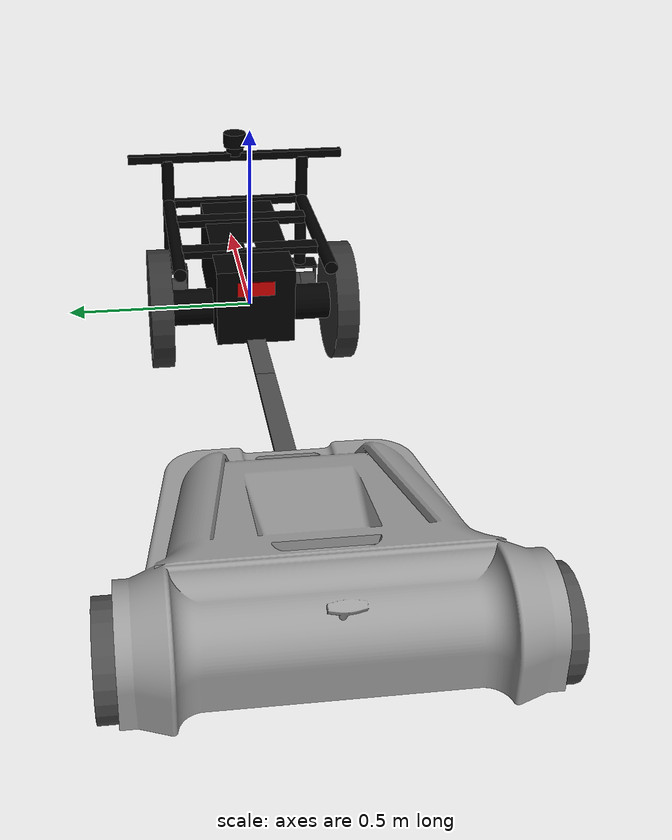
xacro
<?xml version="1.0"?>
<robot name="beaverbot" xmlns:xacro="http://ros.org/wiki/xacro">

  <!-- Import all robot parts which were xacroed -->
  <xacro:include filename="$(find beaverbot_description)/urdf/beaverbot.xacro" />
  <!-- Import Rviz colors -->
  <xacro:include filename="$(find beaverbot_description)/urdf/colors.xacro" />
  <!-- Import robot properties -->
  <xacro:include filename="$(find beaverbot_description)/urdf/properties.xacro" />
  <!-- Import sensor and actuator properties -->
  <xacro:include filename="$(find beaverbot_description)/urdf/sensors_and_actuators.xacro" />
  <xacro:arg name="robot_namespace" default="/" />

  <link name="base_link">
    <visual>
      <geometry>
        <box size="0.01 0.01 0.01"/>
      </geometry>
      <material name="Black"/>
    </visual>
    <collision>
      <geometry>
        <box size="0.01 0.01 0.01"/>
      </geometry>
    </collision>
    <xacro:inertial_box mass="0.01" x="0.01" y="0.01" z="0.01" ox="0.0" oy="0.0" oz="0.0"/>
  </link>
  <gazebo reference="base_link">
    <material>Gazebo/Black</material>
  </gazebo>

  <link name="base">
    <visual>
      <geometry>
        <box size="0.52 0.21 0.21"/>
      </geometry>
      <material name="Black"/>
    </visual>
    <xacro:inertial_box mass="${base_mass}" x="0.52" y="0.21" z="0.21" ox="0.0" oy="0.0" oz="0.0"/>
  </link>
  <gazebo reference="base">
    <material>Gazebo/Black</material>
  </gazebo>
  <joint name="base_link_to_base" type="fixed">
    <parent link="base_link"/>
    <child link="base"/>
    <origin xyz="0.11 0.0 0.061" />
  </joint>

  <link name="robot_center">
    <visual>
      <geometry>
        <box size="0.01 0.01 0.01" />
      </geometry>
      <material name="Red"/>
    </visual>
  </link>
  <gazebo reference="robot_center">
    <material>Gazebo/Red</material>
  </gazebo>
  <joint name="base_link_to_robot_center" type="fixed">
    <parent link="base_link"/>
    <child link="robot_center"/>
    <origin xyz="0 0.0 0.0" />
  </joint>

  <!-- ////////////////////////// Base Link and Wheel Connections and Links ////////////////////////// -->

  <xacro:default_box parent="base" child_name="back_base_support_frame" mass="${base_support_frame_mass}" sizex="0.05" sizey="0.40" sizez="0.02" ox="-0.11" oy="0.0" oz="0.105" yaw="0.0" pitch="0.0" roll="0.0" color="Black" />
  <xacro:default_box parent="base" child_name="front_base_support_frame" mass="${base_support_frame_mass}" sizex="0.05" sizey="0.40" sizez="0.02" ox="0.11" oy="0.0" oz="0.105" yaw="0.0" pitch="0.0" roll="0.0" color="Black" />

  <xacro:default_zylinder_in_X parent="back_base_support_frame" child_name="zylinder_base_support_left" mass="${zylinder_base_support_mass}" length="0.52" radius="0.0175" ox="0.11" oy="0.2" oz="0.0" yaw="0.0" pitch="${pi/2}" roll="0.0" color="Black" />
  <xacro:default_zylinder_in_X parent="back_base_support_frame" child_name="zylinder_base_support_right" mass="${zylinder_base_support_mass}" length="0.52" radius="0.0175" ox="0.11" oy="-0.2" oz="0.0" yaw="0.0" pitch="${pi/2}" roll="0.0" color="Black" />

  <xacro:default_box parent="base" child_name="support_link" mass="${support_link_mass}" sizex="0.022" sizey="0.4" sizez="0.022" ox="0.26" oy="0.0" oz="0.105" yaw="0.0" pitch="0.0" roll="0.0" color="Black" />

  <xacro:default_zylinder_in_Y parent="base" child_name="wheel_support_left" mass="${wheel_support_mass}" length="0.13" radius="0.05" ox="-0.11" oy="0.155" oz="-0.061" roll="${pi/2}" yaw="0.0" pitch="0.0" color="Black" />
  <xacro:default_zylinder_in_Y parent="base" child_name="wheel_support_right" mass="${wheel_support_mass}" length="0.13" radius="0.05" ox="-0.11" oy="-0.155" oz="-0.061" roll="${pi/2}" yaw="0.0" pitch="0.0" color="Black" />

  <xacro:default_zylinder_in_Z parent="top_support" child_name="lidar_base" mass="${lidar_base_mass}" length="0.025" radius="0.025" ox="0.01" oy="0.0" oz="0.015" roll="0.0" yaw="0.0" pitch="0.0" color="Black"/>

  <xacro:default_box parent="base" child_name="back_light" mass="${back_light_mass}" sizex="0.005" sizey="0.1" sizez="0.04" ox="-0.26" oy="0.0" oz="0.055" yaw="0.0" pitch="0.0" roll="0.0" color="Red" />

  <!-- ////////////////////////// Outer frame with Links and Plates ////////////////////////// -->

  <xacro:default_box parent="base" child_name="top_support" mass="${top_support_mass}" sizex="0.022" sizey="0.63" sizez="0.022" ox="0.26" oy="0.0" oz="0.245" yaw="0.0" pitch="0.0" roll="0.0" color="Black" />

  <!-- ////////////////////////// Omnidirectional Wheels ////////////////////////// -->

  <xacro:default_zylinder_in_Z parent="zylinder_base_support_left" child_name="zylinder_to_castor_left" mass="${zylinder_to_castor_mass}" length="0.35" radius="0.0175" ox="0.26" oy="0.0" oz="-0.04" yaw="0.0" pitch="0.0" roll="0.0" color="Black"/>
  <xacro:default_zylinder_in_Z parent="zylinder_base_support_right" child_name="zylinder_to_castor_right" mass="${zylinder_to_castor_mass}" length="0.35" radius="0.0175" ox="0.26" oy="0.0" oz="-0.04" yaw="0.0" pitch="0.0" roll="0.0" color="Black"/>

  <xacro:default_box parent="zylinder_to_castor_left" child_name="castor_plate_left" mass="${castor_plate_mass}" sizex="0.07" sizey="0.10" sizez="0.005" ox="0.0" oy="0.0" oz="-0.175" yaw="0.0" pitch="0.0" roll="0.0" color="Black" />
  <xacro:default_box parent="zylinder_to_castor_right" child_name="castor_plate_right" mass="${castor_plate_mass}" sizex="0.07" sizey="0.10" sizez="0.005" ox="0.0" oy="0.0" oz="-0.175" yaw="0.0" pitch="0.0" roll="0.0" color="Black" />

  <xacro:default_box parent="castor_plate_left" child_name="castor_support_leftleft" mass="${castor_support_mass}" sizex="0.03" sizey="0.005" sizez="0.09" ox="0.0" oy="0.0475" oz="-0.045" yaw="0.0" pitch="0.0" roll="0.0" color="Black" />
  <xacro:default_box parent="castor_plate_left" child_name="castor_support_rightleft" mass="${castor_support_mass}" sizex="0.03" sizey="0.005" sizez="0.09" ox="0.0" oy="-0.0475" oz="-0.045" yaw="0.0" pitch="0.0" roll="0.0" color="Black" />
  <xacro:default_box parent="castor_plate_right" child_name="castor_support_leftright" mass="${castor_support_mass}" sizex="0.03" sizey="0.005" sizez="0.09" ox="0.0" oy="0.0475" oz="-0.045" yaw="0.0" pitch="0.0" roll="0.0" color="Black" />
  <xacro:default_box parent="castor_plate_right" child_name="castor_support_rightright" mass="${castor_support_mass}" sizex="0.03" sizey="0.005" sizez="0.09" ox="0.0" oy="-0.0475" oz="-0.045" yaw="0.0" pitch="0.0" roll="0.0" color="Black" />

  <xacro:default_zylinder_in_Y_with_collision parent="castor_plate_left" child_name="castor_leftleft" mass="${castor_mass}" length="0.045" radius="0.04" ox="0.0" oy="0.0225" oz="-0.075" roll="${pi/2}" yaw="0.0" pitch="0.0" color="Grey" mu1="${mu1}" mu2="${mu2}" kp="${kp}" kd="${kd}" />
  <xacro:default_zylinder_in_Y_with_collision parent="castor_plate_left" child_name="castor_rightleft" mass="${castor_mass}" length="0.045" radius="0.04" ox="0.0" oy="-0.0225" oz="-0.075" roll="${pi/2}" yaw="0.0" pitch="0.0" color="Grey" mu1="${mu1}" mu2="${mu2}" kp="${kp}" kd="${kd}"  />
  <xacro:default_zylinder_in_Y_with_collision parent="castor_plate_right" child_name="castor_leftright" mass="${castor_mass}" length="0.045" radius="0.04" ox="0.0" oy="0.0225" oz="-0.075" roll="${pi/2}" yaw="0.0" pitch="0.0" color="Grey" mu1="${mu1}" mu2="${mu2}" kp="${kp}" kd="${kd}"  />
  <xacro:default_zylinder_in_Y_with_collision parent="castor_plate_right" child_name="castor_rightright" mass="${castor_mass}" length="0.045" radius="0.04" ox="0.0" oy="-0.0225" oz="-0.075" roll="${pi/2}" yaw="0.0" pitch="0.0" color="Grey" mu1="${mu1}" mu2="${mu2}" kp="${kp}" kd="${kd}"  />

  <!-- ////////////////////////// Actuators and Sensors ////////////////////////// -->

  <xacro:wheel_actuator parent="wheel_support_left" child_name="wheel_left" mass="${wheel_mass}" length="0.06" radius="${wheel_radius}" ox="0.0" oy="0.095" oz="0.0" roll="${pi/2}" yaw="0.0" pitch="0.0" color="Grey" axis_x="0" axis_y="1" axis_z="0" mu1="${mu1}" mu2="${mu2}" kp="${kp}" kd="${kd}" />
  <xacro:wheel_actuator parent="wheel_support_right" child_name="wheel_right" mass="${wheel_mass}" length="0.06" radius="${wheel_radius}" ox="0.0" oy="-0.095" oz="0.0" roll="${pi/2}" yaw="0.0" pitch="0.0" color="Grey" axis_x="0" axis_y="1" axis_z="0" mu1="${mu1}" mu2="${mu2}" kp="${kp}" kd="${kd}" />

  <xacro:lidar_sensor parent="lidar_base" lidar_name="laser" length="${lidar_length}" radius="${lidar_radius}" mass="${lidar_mass}" ox="0.0" oy="0.0" oz="0.0325" update_rate="${lidar_update_rate}" min_angle="${lidar_min_angle}" max_angle="${lidar_max_angle}" min_range="${lidar_min_range}" max_range="${lidar_max_range}" range_resolution="${lidar_range_resolution}" stdv="${lidar_stdv}" />

  <xacro:imu_sensor parent="back_base_support_frame" imu_name="imu" imu_topic="imu/data_raw" mass="${imu_mass}" sizex="0.03" sizey="0.03" sizez="0.005" ox="0.0" oy="0.0" oz="0.01" update_rate="${imu_update_rate}" noise="${imu_noise}" />

  <xacro:gps_sensor parent="back_base_support_frame" gps_name="gps" gps_topic="fix" mass="${gps_mass}" sizex="0.03" sizey="0.03" sizez="0.005" ox="0.0" oy="0.0" oz="0.0015" update_rate="${gps_update_rate}" initial_latitude="${gps_latitude}" initial_longitude="${gps_longitude}" noise="${gps_noise}" />

  <xacro:if value="${use_trailer}">
    <xacro:trailer parent="base" trailer_name="trailer" mu1="0.1" mu2="0.1" kp="${kp}" kd="${kd}" />
  </xacro:if>
 <gazebo>
    <plugin name="gazebo_ros_control" filename="libgazebo_ros_control.so">
      <robotNamespace>$(arg robot_namespace)</robotNamespace>
      <legacyModeNS>true</legacyModeNS>
    </plugin>
  </gazebo>

</robot>

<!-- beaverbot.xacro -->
<robot name="beaverbot" xmlns:xacro="http://ros.org/wiki/xacro">

  <!-- ////////////////////////////INERTIA DEFINITIONS//////////////////////////// -->
  <!-- based on the inertia list from wikipedia -->

  <xacro:macro name="inertial_zylinder_x" params="mass radius height">
    <inertial>
      <mass value="${mass}" />
      <inertia ixx="${(mass/2)*radius*radius}" ixy="0.0" ixz="0.0" iyy="${(mass/12)*(3*radius*radius+height*height)}" iyz="0.0" izz="${(mass/12)*(3*radius*radius+height*height)}" />
    </inertial>
  </xacro:macro>

  <xacro:macro name="inertial_zylinder_y" params="mass radius height">
    <inertial>
      <mass value="${mass}" />
      <inertia ixx="${(mass/12)*(3*radius*radius+height*height)}" ixy="0.0" ixz="0.0" iyy="${(mass/2)*radius*radius}" iyz="0.0" izz="${(mass/12)*(3*radius*radius+height*height)}" />
    </inertial>
  </xacro:macro>

  <xacro:macro name="inertial_zylinder_z" params="mass radius height">
    <inertial>
      <mass value="${mass}" />
      <inertia ixx="${(mass/12)*(3*radius*radius+height*height)}" ixy="0.0" ixz="0.0" iyy="${(mass/12)*(3*radius*radius+height*height)}" iyz="0.0" izz="${(mass/2)*radius*radius}" />
    </inertial>
  </xacro:macro>

  <xacro:macro name="inertial_box" params="mass x y z ox oy oz">
    <inertial>
      <origin xyz="${ox} ${oy} ${oz}" />
      <mass value="${mass}" />
      <inertia ixx="${(mass/12)*(y*y+z*z)}" ixy="0.0" ixz="0.0" iyy="${(mass/12)*(x*x+z*z)}" iyz="0.0" izz="${(mass/12)*(y*y+x*x)}" />
    </inertial>
  </xacro:macro>

  <!-- //////////////////////////// Robot xacros //////////////////////////// -->

  <xacro:macro name="default_box" params="parent child_name mass sizex sizey sizez ox oy oz roll pitch yaw color">
    <link name="${child_name}" >
      <visual>
        <geometry>
          <box size="${sizex} ${sizey} ${sizez}" />
        </geometry>
        <origin rpy="${roll} ${pitch} ${yaw}" />
        <material name="${color}" />
      </visual>
      <xacro:inertial_box mass="${mass}" x="${sizex}" y="${sizey}" z="${sizez}" ox="0.0" oy="0.0" oz="0.0" />
    </link>
    <gazebo reference="${child_name}" >
      <material>Gazebo/${color}</material>
    </gazebo>
    <joint name="${parent}_to_${child_name}" type="fixed">
      <parent link="${parent}" />
      <child link="${child_name}" />
      <origin xyz="${ox} ${oy} ${oz}" />
    </joint>
  </xacro:macro>

  <xacro:macro name="default_zylinder_in_X" params="parent child_name mass length radius ox oy oz roll pitch yaw color">
    <link name="${child_name}" >
      <visual>
        <geometry>
          <cylinder length="${length}" radius="${radius}" />
        </geometry>
        <origin rpy="${roll} ${pitch} ${yaw}" />
        <material name="${color}" />
      </visual>
      <xacro:inertial_zylinder_x mass="${mass}" radius="${radius}" height="${length}" />
    </link>
    <gazebo reference="${child_name}" >
      <material>Gazebo/${color}</material>
    </gazebo>
    <joint name="${parent}_to_${child_name}" type="fixed">
      <parent link="${parent}" />
      <child link="${child_name}" />
      <origin xyz="${ox} ${oy} ${oz}" />
    </joint>
  </xacro:macro>

  <xacro:macro name="default_zylinder_in_Y" params="parent child_name mass length radius ox oy oz roll pitch yaw color">
    <link name="${child_name}" >
      <visual>
        <geometry>
          <cylinder length="${length}" radius="${radius}" />
        </geometry>
        <origin rpy="${roll} ${pitch} ${yaw}" />
        <material name="${color}" />
      </visual>
      <xacro:inertial_zylinder_y mass="${mass}" radius="${radius}" height="${length}" />
    </link>
    <gazebo reference="${child_name}" >
      <material>Gazebo/${color}</material>
    </gazebo>
    <joint name="${parent}_to_${child_name}" type="fixed">
      <parent link="${parent}" />
      <child link="${child_name}" />
      <origin xyz="${ox} ${oy} ${oz}" />
    </joint>
  </xacro:macro>

  <xacro:macro name="default_zylinder_in_Z" params="parent child_name mass length radius ox oy oz roll pitch yaw color">
    <link name="${child_name}" >
      <visual>
        <geometry>
          <cylinder length="${length}" radius="${radius}" />
        </geometry>
        <origin rpy="${roll} ${pitch} ${yaw}" />
        <material name="${color}" />
      </visual>
      <xacro:inertial_zylinder_z mass="${mass}" radius="${radius}" height="${length}" />
    </link>
    <gazebo reference="${child_name}" >
      <material>Gazebo/${color}</material>
    </gazebo>
    <joint name="${parent}_to_${child_name}" type="fixed">
      <parent link="${parent}" />
      <child link="${child_name}" />
      <origin xyz="${ox} ${oy} ${oz}" />
    </joint>
  </xacro:macro>

  <!-- //////////////////////////// Robot xacros with collision //////////////////////////// -->

  <xacro:macro name="default_box_with_collision" params="parent child_name mass sizex sizey sizez ox oy oz roll pitch yaw color">
    <link name="${child_name}" >
      <visual>
        <geometry>
          <box size="${sizex} ${sizey} ${sizez}" />
        </geometry>
        <origin rpy="${roll} ${pitch} ${yaw}" />
        <material name="${color}" />
      </visual>
      <collision>
        <geometry>
          <box size="${sizex} ${sizey} ${sizez}" />
        </geometry>
        <origin rpy="${roll} ${pitch} ${yaw}" />
      </collision>
      <xacro:inertial_box mass="${mass}" x="${sizex}" y="${sizey}" z="${sizez}" ox="0.0" oy="0.0" oz="0.0"/>
    </link>
    <gazebo reference="${child_name}" >
      <material>Gazebo/${color}</material>
    </gazebo>
    <joint name="${parent}_to_${child_name}" type="fixed">
      <parent link="${parent}" />
      <child link="${child_name}" />
      <origin xyz="${ox} ${oy} ${oz}" />
    </joint>
  </xacro:macro>

  <xacro:macro name="default_zylinder_in_X_with_collision" params="parent child_name mass length radius ox oy oz roll pitch yaw color">
    <link name="${child_name}" >
      <visual>
        <geometry>
          <cylinder length="${length}" radius="${radius}" />
        </geometry>
        <origin rpy="${roll} ${pitch} ${yaw}" />
        <material name="${color}" />
      </visual>
      <collision>
        <geometry>
          <cylinder length="${length}" radius="${radius}" />
        </geometry>
        <origin rpy="${roll} ${pitch} ${yaw}" />
      </collision>
      <xacro:inertial_zylinder_x mass="${mass}" radius="${radius}" height="${length}" />
    </link>
    <gazebo reference="${child_name}" >
      <material>Gazebo/${color}</material>
    </gazebo>
    <joint name="${parent}_to_${child_name}" type="fixed">
      <parent link="${parent}" />
      <child link="${child_name}" />
      <origin xyz="${ox} ${oy} ${oz}" />
    </joint>
  </xacro:macro>

  <xacro:macro name="default_zylinder_in_Y_with_collision" params="parent child_name mass length radius ox oy oz roll pitch yaw color mu1 mu2 kp kd">
    <link name="${child_name}" >
      <visual>
        <geometry>
          <cylinder length="${length}" radius="${radius}" />
        </geometry>
        <origin rpy="${roll} ${pitch} ${yaw}" />
        <material name="${color}" />
      </visual>
      <collision>
        <geometry>
          <cylinder length="${length}" radius="${radius}" />
        </geometry>
        <origin rpy="${roll} ${pitch} ${yaw}" />
      </collision>
      <xacro:inertial_zylinder_y mass="${mass}" radius="${radius}" height="${length}" />
    </link>
    <gazebo reference="${child_name}" >
      <mu1 value="${mu1}"/>
      <mu2 value="${mu2}"/>
      <kp value="${kp}" />
      <kd value="${kd}" />
      <material>Gazebo/${color}</material>
    </gazebo>
    <joint name="${parent}_to_${child_name}" type="fixed">
      <parent link="${parent}" />
      <child link="${child_name}" />
      <origin xyz="${ox} ${oy} ${oz}" />
    </joint>
  </xacro:macro>

  <xacro:macro name="default_zylinder_in_Z_with_collision" params="parent child_name mass length radius ox oy oz roll pitch yaw color">
    <link name="${child_name}" >
      <visual>
        <geometry>
          <cylinder length="${length}" radius="${radius}" />
        </geometry>
        <origin rpy="${roll} ${pitch} ${yaw}" />
        <material name="${color}" />
      </visual>
      <collision>
        <geometry>
          <cylinder length="${length}" radius="${radius}" />
        </geometry>
        <origin rpy="${roll} ${pitch} ${yaw}" />
      </collision>
      <xacro:inertial_zylinder_z mass="${mass}" radius="${radius}" height="${length}" />
    </link>
    <gazebo reference="${child_name}" >
      <material>Gazebo/${color}</material>
    </gazebo>
    <joint name="${parent}_to_${child_name}" type="fixed">
      <parent link="${parent}" />
      <child link="${child_name}" />
      <origin xyz="${ox} ${oy} ${oz}" />
    </joint>
  </xacro:macro>

</robot>

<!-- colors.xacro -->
<robot name="beaverbot" xmlns:xacro="http://ros.org/wiki/xacro">

  <material name="Black">
    <color rgba="0.0 0.0 0.0 1.0"/>
  </material>

  <material name="Blue">
    <color rgba="0.0 0.0 0.8 1.0"/>
  </material>

  <material name="Green">
    <color rgba="0.0 0.8 0.0 1.0"/>
  </material>

  <material name="Yellow">
    <color rgba="1 1 0 1"/>
  </material>

  <material name="Grey">
    <color rgba="0.2 0.2 0.2 1.0"/>
  </material>

  <material name="WhiteGlow">
	<color rgba="0.75 0.75 0.75 1"/>
  </material>

  <material name="Darkgrey">
	<color rgba="0.41 0.41 0.41 1"/>
  </material>

  <material name="Orange">
    <color rgba="${255/255} ${108/255} ${10/255} 1.0"/>
  </material>

  <material name="Brown">
    <color rgba="${222/255} ${207/255} ${195/255} 1.0"/>
  </material>

  <material name="Red">
    <color rgba="0.8 0.0 0.0 1.0"/>
  </material>

  <material name="White">
    <color rgba="1.0 1.0 1.0 1.0"/>
  </material>

</robot>

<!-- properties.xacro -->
<robot name="beaverbot" xmlns:xacro="http://ros.org/wiki/xacro">

  <xacro:property name="pi" value="3.14159" />

  <!-- /////////////////// size of robot parts /////////////////// -->
  <xacro:property name="wheel_radius" value="0.164" />
  <xacro:property name="wheel_seperation" value="0.53" />

  <!-- /////////////////// mass of robot parts /////////////////// -->
  <xacro:property name="base_mass" value="30.0" />                  <!-- updated -->
  <xacro:property name="base_support_frame_mass" value="0.415" />   <!-- updated -->
  <xacro:property name="zylinder_base_support_mass" value="1.08" /> <!-- updated -->
  <xacro:property name="support_link_mass" value="0.415" />         <!-- updated -->
  <xacro:property name="wheel_support_mass" value="11.5" />         <!-- updated -->
  <xacro:property name="wheel_mass" value="4.0" />                  <!-- updated -->

  <xacro:property name="lidar_base_mass" value="0.2" />             <!-- updated -->
  <xacro:property name="front_light_mass" value="0.05" />           <!-- updated -->
  <xacro:property name="back_light_mass" value="0.1" />             <!-- updated -->

  <xacro:property name="zylinder_to_castor_mass" value="0.725" />   <!-- updated -->
  <xacro:property name="castor_plate_mass" value="0.12" />          <!-- updated -->
  <xacro:property name="castor_support_mass" value="0.1" />         <!-- updated -->
  <xacro:property name="castor_mass" value="0.5" />                 <!-- updated -->

  <xacro:property name="top_support_mass" value="0.65" />           <!-- updated -->
  <xacro:property name="top_frame_yellow_mass" value="1.5" />       <!-- updated -->
  <xacro:property name="top_frame_black_mass" value="1.8" />        <!-- updated -->
  <xacro:property name="front_frame_black_mass" value="2.0" />      <!-- updated -->

  <xacro:property name="long_zylinder_mass" value="1.17" />         <!-- updated -->
  <xacro:property name="short_zylinder_mass" value="0.415" />       <!-- updated -->

  <!-- /////////////////// sensor specifications /////////////////// -->
  <xacro:property name="dist_size" value="0.03" />
  <xacro:property name="dist_sensor_update_rate" value="40.0" />	<!-- update rate in ms or in Hz??? -->
  <xacro:property name="dist_sensor_min_range" value="0.10" />
  <xacro:property name="dist_sensor_max_range" value="3.00" />
  <xacro:property name="dist_sensor_noise" value="0.01" />

  <xacro:property name="lidar_update_rate" value="10.0" />			<!-- update rate in ms or in Hz??? -->
  <xacro:property name="lidar_mass" value="0.3" />
  <xacro:property name="lidar_length" value="0.04" />
  <xacro:property name="lidar_radius" value="0.0325" />
  <xacro:property name="lidar_min_range" value="0.15" />
  <xacro:property name="lidar_max_range" value="8.0" />
  <xacro:property name="lidar_stdv" value="0.01" />
  <xacro:property name="lidar_range_resolution" value="0.01" />
  <xacro:property name="lidar_min_angle" value="0.0" />
  <xacro:property name="lidar_max_angle" value="6.283185" />

  <xacro:property name="imu_update_rate" value="40.0" />
  <xacro:property name="imu_mass" value="0.05" />
  <xacro:property name="imu_noise" value="0.01" />

  <xacro:property name="gps_update_rate" value="10.0" />
  <xacro:property name="gps_mass" value="0.05" />
  <xacro:property name="gps_noise" value="0.01" />
  <xacro:property name="gps_latitude" value="34.70242845166667" />
  <xacro:property name="gps_longitude" value="137.408935105" />

  <xacro:property name="mu1" value="0.5" />
  <xacro:property name="mu2" value="0.5" />
  <xacro:property name="kp" value="10000000.0" />
  <xacro:property name="kd" value="1.0" />

  <xacro:property name="use_trailer" value="true" />

</robot>

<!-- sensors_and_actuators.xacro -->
<robot name="beaverbot" xmlns:xacro="http://ros.org/wiki/xacro">

  <!-- ////////////////////////////DISTANCE SENSOR XACROS//////////////////////////// -->

  <xacro:macro name="distance_sensor_sonar" params="prefix sufix parent mass sizex sizey sizez ox oy oz roll pitch yaw vert_view hor_view update_rate min_range max_range noise">
    <link name="${prefix}_${sufix}">
	  <visual>
	    <geometry>
	  <box size="${sizex} ${sizey} ${sizez}"/>
	        </geometry>
		<material name="White" />
	  </visual>
	  <xacro:inertial_box mass="${mass}" x="${sizex}" y="${sizey}" z="${sizez}" ox="0.0" oy="0.0" oz="0.0"/>
	</link>

        <joint name="${parent}_to_${prefix}_${sufix}" type="fixed">
	  <parent link="${parent}"/>
	  <child link="${prefix}_${sufix}"/>
	  <origin xyz="${ox} ${oy} ${oz}" rpy="${roll} ${pitch} ${yaw}"/>
	</joint>

        <gazebo reference="${prefix}_${sufix}">
	  <material>Gazebo/White</material>
	  <sensor type="ray" name="${prefix}_${sufix}">
	    <always_on>true</always_on>
	        <pose>0 0 0 0 0 0</pose>
		<visualize>false</visualize>
		<update_rate>${update_rate}</update_rate>
		<ray>
		  <scan>
		    <horizontal>
			  <samples>5</samples>
			  <resolution>1</resolution>
			  <min_angle>${hor_view-0.01}</min_angle>
			  <max_angle>${hor_view+0.01}</max_angle>
			</horizontal>
		    <vertical>
			  <samples>5</samples>
			  <resolution>1</resolution>
			  <min_angle>${vert_view-0.01}</min_angle>
			  <max_angle>${vert_view+0.01}</max_angle>
			</vertical>
		  </scan>
		  <range>
		    <min>${min_range}</min>
			<max>${max_range}</max>
	        <resolution>0.01</resolution>
		  </range>
		</ray>
		<plugin name="gazebo_ros_${prefix}_${sufix}_controller" filename="libhector_gazebo_ros_sonar.so">
		  <gaussianNoise>${noise}</gaussianNoise>
		  <topicName>/${prefix}_${sufix}/sonar</topicName>
		  <frameId>${prefix}_${sufix}</frameId>
		</plugin>
	  </sensor>
    </gazebo>
  </xacro:macro>

  <xacro:macro name="distance_sensor_laser" params="prefix sufix parent mass ox oy oz hor_view update_rate min_range max_range noise">
    <link name="${prefix}_distance_sensor_link_${sufix}">
	  <visual>
	    <geometry>
    	  <box size="${dist_size} ${dist_size} ${dist_size}"/>
		</geometry>
		<material name="White" />
	  </visual>
	  <xacro:inertial_box mass="${mass}" x="${dist_size}" y="${dist_size}" z="${dist_size}" ox="0.0" oy="0.0" oz="0.0"/>
	</link>

	<gazebo reference="${prefix}_distance_sensor_link_${sufix}">
      <material>Gazebo/White</material>
	</gazebo>

	<joint name="${parent}_to_${prefix}_distance_sensor_link_${sufix}" type="fixed">
	  <parent link="${parent}"/>
	  <child link="${prefix}_distance_sensor_link_${sufix}"/>
	  <origin xyz="${ox} ${oy} ${oz}"/>
	</joint>

	<gazebo reference="${prefix}_distance_sensor_link_${sufix}">
	  <sensor type="ray" name="${prefix}_distance_sensor_${sufix}">
	    <always_on>true</always_on>
		<pose>0 0 0 0 0 0</pose>
		<visualize>false</visualize>
		<update_rate>${update_rate}</update_rate>
		<ray>
		  <scan>
		    <horizontal>
			  <samples>3</samples>
			  <resolution>1</resolution>
			  <min_angle>${hor_view-0.01}</min_angle>
			  <max_angle>${hor_view}+0.01</max_angle>
			</horizontal>
		  </scan>
		  <range>
		    <min>${min_range}</min>
			<max>${max_range}</max>
	        <resolution>0.01</resolution>
		  </range>
		  <noise>
		    <type>gaussian</type>
			<mean>0.0</mean>
			<stddev>${noise}</stddev>
		  </noise>
		</ray>
		<plugin name="gazebo_ros_${parent}_to_${prefix}_distance_sensor_${sufix}_controller" filename="libgazebo_ros_laser.so">
		  <topicName>/${prefix}_distance_sensor_${sufix}/scan</topicName>
		  <frameName>${prefix}_distance_sensor_link_${sufix}</frameName>
		</plugin>
	  </sensor>
    </gazebo>
  </xacro:macro>

<!-- ///////////////////////// Wheel Actuators ///////////////////////// -->

  <xacro:macro name="wheel_actuator" params="parent child_name mass length radius ox oy oz roll pitch yaw color axis_x axis_y axis_z mu1 mu2 kp kd">
      <link name="${child_name}" >
      <visual>
        <geometry>
	  <cylinder length="${length}" radius="${radius}" />
        </geometry>
        <origin rpy="${roll} ${pitch} ${yaw}" />
        <material name="${color}" />
      </visual>
      <collision>
        <geometry>
	  <cylinder length="${length}" radius="${radius}" />
        </geometry>
        <origin rpy="${roll} ${pitch} ${yaw}" />
      </collision>
      <xacro:inertial_zylinder_y mass="${mass}" radius="${radius}" height="${length}" />
    </link>
    <gazebo reference="${child_name}" >
      <mu1 value="${mu1}"/>
      <mu2 value="${mu2}"/>
      <kp value="${kp}" />
      <kd value="${kd}" />
      <material>Gazebo/${color}</material>
    </gazebo>
    <joint name="${parent}_to_${child_name}" type="continuous">
      <parent link="${parent}" />
      <child link="${child_name}" />
      <axis xyz="${axis_x} ${axis_y} ${axis_z}" />
      <origin xyz="${ox} ${oy} ${oz}" />
    </joint>
    <transmission name="${child_name}_trans">
      <type>transmission_interface/SimpleTransmission</type>
      <actuator name="${child_name}_motor">
        <mechanicalReduction>1</mechanicalReduction>
      </actuator>
      <joint name="${parent}_to_${child_name}">
        <hardwareInterface>hardware_interface/VelocityJointInterface</hardwareInterface>
      </joint>
    </transmission>

  </xacro:macro>

<!-- ////////////////////////////// Trailer ////////////////////////////// -->
<xacro:macro name="trailer" params="parent trailer_name mu1 mu2 kp kd">
	<link name="${trailer_name}_base_link">
		<visual>
			<geometry>
				<mesh filename="package://beaverbot_description/meshes/cleaner.stl" scale="0.001 0.001 0.001"/>
			</geometry>
			<material name="Gray"/>
			<origin rpy="1.57 0 -1.57" xyz="-0.15 0.4 -0.05" />
		</visual>
		<collision>
			<geometry>
				<mesh filename="package://beaverbot_description/meshes/cleaner.stl" scale="0.001 0.001 0.001"/>
			</geometry>
			<material name="Gray"/>
			<origin rpy="1.57 0 -1.57" xyz="-0.15 0.4 -0.05" />
		</collision>
		<xacro:inertial_box mass="0.001" x="0.01" y="0.01" z="0.01" ox="-0.15" oy="0.4" oz="-0.05"/>
	</link>
	<gazebo reference="${trailer_name}_base_link" >
	  <material>Gazebo/Gray</material>
	</gazebo>
	<link name="${trailer_name}_connector">
		<visual>
			<origin xyz="-0.25 0 0" rpy="0 0 0" />
			<geometry>
				<box size="0.5 0.05 0.01"/>
			</geometry>
		</visual>
		<collision>
			<origin xyz="-0.25 0 0" rpy="0 0 0" />
			<geometry>
				<box size="0.5 0.05 0.01"/>
			</geometry>
		</collision>
		<xacro:inertial_box mass="0.001" x="0.01" y="0.01" z="0.01" ox="0.0" oy="0.0" oz="0.0"/>
	</link>
	<gazebo reference="${trailer_name}_connector" >
		<material>Gazebo/DarkGray</material>
	</gazebo>
	<link name="tractor_connector">
		<visual>
			<origin xyz="0.15 0 0" rpy="0 0 0" />
			<geometry>
				<box size="0.3 0.05 0.01"/>
			</geometry>
		</visual>
		<collision>
			<origin xyz="0.15 0 0" rpy="0 0 0" />
			<geometry>
				<box size="0.3 0.05 0.01"/>
			</geometry>
		</collision>
		<xacro:inertial_box mass="0.01" x="0.01" y="0.01" z="0.01" ox="0.0" oy="0.0" oz="0.0"/>
	</link>
	<gazebo reference="tractor_connector" >
		<material>Gazebo/DarkGray</material>
	</gazebo>
	<joint name="tractor_to_${parent}" type="fixed">
		<parent link="${parent}" />
		<child link="tractor_connector" />
		<origin xyz="-0.45 0 -0.1" rpy="0 0 0" />
	</joint>
	<joint name="tractor_connector_to_trailer_connector" type="revolute">
		<parent link="tractor_connector" />
		<child link="${trailer_name}_connector" />
		<origin xyz="0.0 0.0 0.0" rpy="0.0 0.0 0.0" />
		<axis xyz="0 0 1" />
		<limit lower="-${pi/4.0}" upper="${pi/4.0}" effort="1.0" velocity="0.01"/>
		<dynamics damping="0.001" friction="0.001"/>
	</joint>
	<joint name="${trailer_name}_connector_to_${trailer_name}_base_link" type="fixed">
		<parent link="${trailer_name}_connector" />
		<child link="${trailer_name}_base_link" />
		<origin xyz="-1 0 0" rpy="0 0 0" />
	</joint>
	<xacro:default_zylinder_in_Y parent="${trailer_name}_base_link" child_name="${trailer_name}_wheel_support_left" mass="0.001" length="0.1" radius="0.05" ox="0.0" oy="0.32" oz="-0.0" roll="1.57" yaw="0.0" pitch="0.0" color="White" />
	<xacro:default_zylinder_in_Y parent="${trailer_name}_base_link" child_name="${trailer_name}_wheel_support_right" mass="0.001" length="0.1" radius="0.05" ox="0.0" oy="-0.32" oz="-0.0" roll="1.57" yaw="0.0" pitch="0.0" color="White" />
	<link name="${trailer_name}_left_wheel">
		<visual>
			<geometry>
				<cylinder length="0.05" radius="0.114" />
			</geometry>
			<origin xyz="0 0 0" rpy="1.57 0 0" />
		</visual>
		<collision>
			<geometry>
				<cylinder length="0.05" radius="0.114" />
			</geometry>
			<origin xyz="0 0 0" rpy="1.57 0 0" />
		</collision>
		<xacro:inertial_zylinder_y mass="0.01" radius="0.114" height="0.01" />
	</link>
	<joint name="${trailer_name}_wheel_shaft_to_left_wheel" type="continuous">
		<parent link="${trailer_name}_wheel_support_left" />
		<child link="${trailer_name}_left_wheel" />
		<origin xyz="0 0.095 0" rpy="0 0 0" />
		<axis xyz="0 1 0" />
	</joint>
	<link name="${trailer_name}_right_wheel">
		<visual>
			<geometry>
				<cylinder length="0.05" radius="0.114" />
			</geometry>
			<origin xyz="0 0 0" rpy="1.57 0 0" />
		</visual>
		<collision>
			<geometry>
				<cylinder length="0.05" radius="0.114" />
			</geometry>
			<origin xyz="0 0 0" rpy="1.57 0 0" />
		</collision>
		<xacro:inertial_zylinder_y mass="0.01" radius="0.114" height="0.05" />
	</link>
	<joint name="${trailer_name}_wheel_shaft_to_right_wheel" type="continuous">
		<parent link="${trailer_name}_wheel_support_right" />
		<child link="${trailer_name}_right_wheel" />
		<origin xyz="0 -0.095 0" rpy="0 0 0" />
		<axis xyz="0 1 0" />
	</joint>
	<gazebo reference="${trailer_name}_left_wheel" >
      <mu1 value="${mu1}"/>
      <mu2 value="${mu2}"/>
      <kp value="${kp}" />
      <kd value="${kd}" />
      <material>Gazebo/DarkGray</material>
    </gazebo>
    <gazebo reference="${trailer_name}_right_wheel" >
      <mu1 value="${mu1}"/>
      <mu2 value="${mu2}"/>
      <kp value="${kp}" />
      <kd value="${kd}" />
      <material>Gazebo/DarkGray</material>
    </gazebo>
  </xacro:macro>

<!-- ////////////////////////////// Lidar ////////////////////////////// -->

  <xacro:macro name="lidar_sensor" params="parent lidar_name length radius mass ox oy oz update_rate min_angle max_angle min_range max_range range_resolution stdv" >
    <link name="${lidar_name}">
	  <visual>
	    <geometry>
		  <cylinder length="${length}" radius="${radius}"/>
		</geometry>
		<origin rpy="0 0 0" xyz="0 0 0"/>
		<material name="Black"/>
	  </visual>
	  <xacro:inertial_zylinder_z mass="${mass}" radius="${radius}" height="${length}" />
	</link>
	<gazebo reference="${lidar_name}">
      <material>Gazebo/Black</material>
  	</gazebo>
	<joint name="$[parent}_to_${lidar_name}" type="fixed">
	  <parent link="${parent}"/>
      <child link="${lidar_name}"/>
	  <origin xyz="${ox} ${oy} ${oz}"/>
	</joint>

	<!-- RPLidar -->
  	<gazebo reference="${lidar_name}">
      <sensor type="ray" name="head_hokuyo_sensor">
        <pose>0 0 0 0 0 0</pose>
		<visualize>false</visualize>
      	<update_rate>${update_rate}</update_rate>
      	<ray>
          <scan>
            <horizontal>
	      <samples>400</samples>
              <resolution>1</resolution>
              <min_angle>${min_angle}</min_angle>
              <max_angle>${max_angle}</max_angle>
          	</horizontal>
          </scan>
          <range>
            <min>${min_range}</min>
            <max>${max_range}</max>
          	<resolution>${range_resolution}</resolution>
          </range>
          <noise>
            <type>gaussian</type>
          	<mean>0.0</mean>
          	<stddev>${stdv}</stddev>
          </noise>
      	</ray>
      	<plugin name="gazebo_ros_head_hokuyo_controller" filename="libgazebo_ros_laser.so">
          <topicName>/scan</topicName>
          <frameName>laser</frameName>
      	</plugin>
      </sensor>
    </gazebo>
  </xacro:macro>

	<!-- ////////////////////////////// IMU ////////////////////////////// -->
  <xacro:macro name="imu_sensor" params="parent imu_name imu_topic mass sizex sizey sizez ox oy oz update_rate noise" >
    <link name="${imu_name}">
	<visual>
		<geometry>
			<box size="${sizex} ${sizey} ${sizez}"/>
		</geometry>
		<material name="White"/>
	</visual>
	<xacro:inertial_box mass="${mass}" x="${sizex}" y="${sizey}" z="${sizez}" ox="0.0" oy="0.0" oz="0.0"/>
    </link>
	<joint name="${parent}_to_${imu_name}" type="fixed">
		<parent link="${parent}"/>
		<child link="${imu_name}"/>
		<origin xyz="${ox} ${oy} ${oz}"/>
	</joint>
	<gazebo reference="${imu_name}">
		<material>Gazebo/White</material>
		<gravity>true</gravity>
		<sensor name="${imu_name}_sensor" type="imu">
			<always_on>true</always_on>
			<update_rate>${update_rate}</update_rate>
			<visualize>true</visualize>
			<topic>${imu_topic}</topic>
			<plugin filename="libgazebo_ros_imu_sensor.so" name="imu_plugin">
				<topicName>${imu_topic}</topicName>
				<bodyName>${imu_name}</bodyName>
				<updateRate>${update_rate}</updateRate>
				<gaussianNoise>${noise}</gaussianNoise>
				<xyzOffset>0 0 0</xyzOffset>
				<rpyOffset>0 0 0</rpyOffset>
				<frameName>${imu_name}</frameName>
			</plugin>
			<pose>0 0 0 0 0 0</pose>
		</sensor>
	</gazebo>
  </xacro:macro>
	<!-- ////////////////////////////GPS SENSORS//////////////////////////// -->
  <xacro:macro name="gps_sensor" params="parent gps_name gps_topic mass sizex sizey sizez ox oy oz update_rate initial_latitude initial_longitude noise">
	<link name="${gps_name}">
	  <visual>
	    <geometry>
	      <box size="${sizex} ${sizey} ${sizez}"/>
		</geometry>
		<material name="White"/>
	  </visual>
	  <xacro:inertial_box mass="${mass}" x="${sizex}" y="${sizey}" z="${sizez}" ox="0.0" oy="0.0" oz="0.0"/>
	</link>
	<joint name="${parent}_to_${gps_name}" type="fixed">
	  <parent link="${parent}"/>
	  <child link="${gps_name}"/>
	  <origin xyz="${ox} ${oy} ${oz}"/>
	</joint>
	<gazebo>
		<plugin filename="libhector_gazebo_ros_gps.so" name="gps_plugin">
			<updateRate>${update_rate}</updateRate>
			<bodyName>${gps_name}</bodyName>
			<frameId>${gps_name}</frameId>
			<topicName>${gps_topic}</topicName>
			<velocityTopicName>navsat/vel</velocityTopicName>
			<referenceLatitude>${initial_latitude}</referenceLatitude>
			<referenceLongitude>${initial_longitude}</referenceLongitude>
			<referenceHeading>0</referenceHeading>
			<referenceAltitude>0</referenceAltitude>
			<gaussianNoise>${noise}</gaussianNoise>
		</plugin>
	</gazebo>
	</xacro:macro>
</robot>
